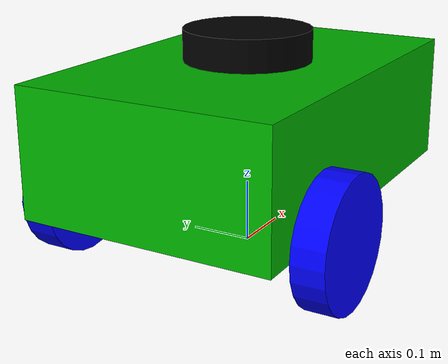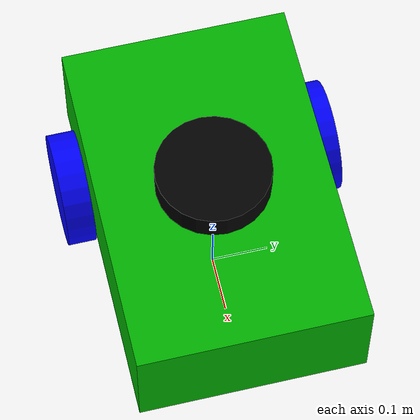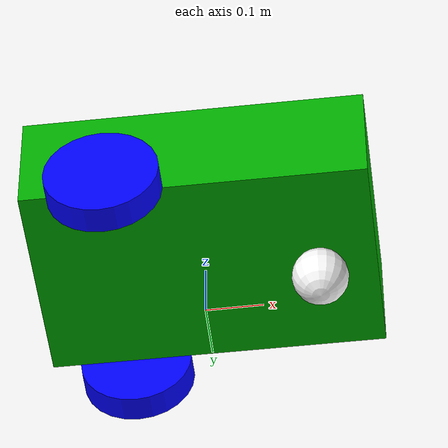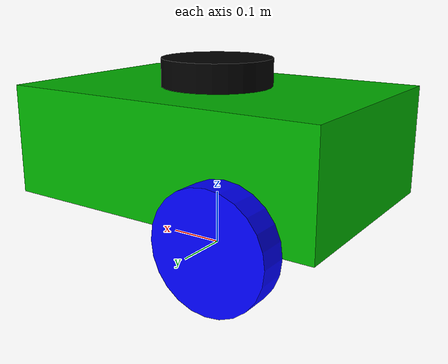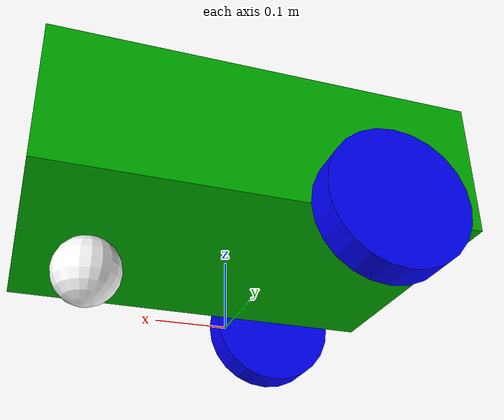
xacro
<?xml version="1.0"?>

<robot xmlns:xacro="http://www.ros.org/wiki/xacro" >

<material name="green">
    <color rgba="0.0 0.7 0.0 1.0"/>
</material>

<material name="blue">
<color rgba="0.0 0.0 1.0 1.0"/>
</material>

<material name="red">
    <color rgba="1.0 0.0 0.0 1.0"/>
</material>

<material name="white">
    <color rgba="1.0 1.0 1.0 1.0"/>
</material>

<material name="black">
    <color rgba="0.0 0.0 0.0 1.0"/>
</material>

<!--- All Robots links-->

<!--Base_link properties-->
<link name="base_footprint"/>

<link name="base_link">
    <visual>
        <geometry>
            <box size="0.6 0.4 0.2"/>
        </geometry>
        <origin xyz="0.0 0.0 0.1" rpy="0.0 0.0 0.0"/>
        <material name="green"/>
    </visual>

    <collision>
        <geometry>
            <box size="0.6 0.4 0.2"/>
        </geometry>
        <origin xyz="0.0 0.0 0.1" rpy="0.0 0.0 0.0"/>
    </collision>
    <inertial>
        <mass value="1.0"/>
        <origin xyz="0 0 0.1"/> <!-- Assuming the center of mass is at the origin -->
        <inertia ixx="0.0167" ixy="0.0" ixz="0.0" iyy="0.0333" iyz="0.0" izz="0.0433"/>
    </inertial>

</link>

<!--Lidar properties-->
<link name = "lidar">

<robot xmlns:xacro="http://www.ros.org/wiki/xacro"  name="roboct">

<material name="green">
    <color rgba="0.0 0.7 0.0 1.0"/>
</material>

<material name="blue">
<color rgba="0.0 0.0 1.0 1.0"/>
</material>

<material name="red">
    <color rgba="1.0 0.0 0.0 1.0"/>
</material>

<material name="white">
    <color rgba="1.0 1.0 1.0 1.0"/>
</material>

<material name="black">
    <color rgba="0.0 0.0 0.0 1.0"/>
</material>

<!--- All Robots links-->

<!--Base_link properties-->
<link name="base_footprint"/>

<link name="base_link">
    <visual>
        <geometry>
            <box size="0.6 0.4 0.2"/>
        </geometry>
        <origin xyz="0.0 0.0 0.1" rpy="0.0 0.0 0.0"/>
        <material name="green"/>
    </visual>

    <collision>
        <geometry>
            <box size="0.6 0.4 0.2"/>
        </geometry>
        <origin xyz="0.0 0.0 0.1" rpy="0.0 0.0 0.0"/>
    </collision>
    <inertial>
        <mass value="1.0"/>
        <origin xyz="0 0 0.1"/> <!-- Assuming the center of mass is at the origin -->
        <inertia ixx="0.0167" ixy="0.0" ixz="0.0" iyy="0.0333" iyz="0.0" izz="0.0433"/>
    </inertial>

</link>

<!--Lidar properties-->
<link name = "lidar">
    <visual>
            <geometry>
                <cylinder radius="0.1" length="0.05"/>
            </geometry>
            <origin xyz="0.0 0.0 0.0" rpy="0.0 0.0 0.0"/>
            <material name="black"/>
    </visual>
    <collision>
        <geometry>
            <cylinder radius="0.1" length="0.05"/>
        </geometry>
    </collision>
    <inertial>
            <mass value="1.0"/>
            <origin xyz="0 0 0"/>
            <inertia ixx="0.001458" iyy="0.001458" izz="0.00125" ixy="0.0" ixz="0.0" iyz="0.0"/>
    </inertial>
</link>

<!--Left Wheel properties-->
<link name = "left_wheel">
    <visual>
            <geometry>
                <cylinder radius="0.1" length="0.05"/>
            </geometry>
            <origin xyz="0.0 0.0 0.0" rpy="1.57 0.0 0.0"/>
            <material name="blue"/>
    </visual>

    <collision>
        <geometry>
            <cylinder radius="0.1" length="0.05"/>
        </geometry>
        <origin xyz="0.0 0.0 0.0" rpy="1.57 0.0 0.0"/>
    </collision>
    <inertial>
            <mass value="1.0"/>
            <origin xyz="0 0 0"/>
            <inertia ixx="0.001458" iyy="0.001458" izz="0.00125" ixy="0.0" ixz="0.0" iyz="0.0"/>
    </inertial>
</link>

<!--Right Wheel properties-->
<link name = "right_wheel">
    <visual>
            <geometry>
                <cylinder radius="0.1" length="0.05"/>
            </geometry>
            <origin xyz="0.0 0.0 0.0" rpy="1.570 0.0 0.0"/>
            <material name="blue"/>
    </visual>

    <collision>
        <geometry>
            <cylinder radius="0.1" length="0.05"/>
        </geometry>
        <origin xyz="0.0 0.0 0.0" rpy="1.57 0.0 0.0"/>
    </collision>
    <inertial>
        <mass value="1.0"/>
        <origin xyz="0 0 0"/>
        <inertia ixx="0.001458" iyy="0.001458" izz="0.00125" ixy="0.0" ixz="0.0" iyz="0.0"/>
    </inertial>
</link>

<!--Caster Wheel properties-->
<link name = "caster_wheel">
<visual>
        <geometry>
            <sphere radius="0.05"/>
        </geometry>
        <origin xyz="0.0 0.0 0.0" rpy="0.0 0.0 0.0"/>
        <material name="white"/>
</visual>
<collision>
        <geometry>
            <sphere radius="0.05"/>
        </geometry>
</collision>
<inertial>
    <origin xyz="0 0 0" rpy="0 0 0"/> <!-- Assume the center of mass is at the origin -->
    <mass value="1.0"/>
    <inertia ixx="0.001" ixy="0.0" ixz="0.0" iyy="0.001" iyz="0.0" izz="0.001"/>
  </inertial>
</link>

<!--- All joints for links-->

<joint name="base_lidar" type="fixed">
    <origin xyz="0.0 0.0 0.225" rpy="0.0 0.0 0.0"/>
    <parent link="base_link"/>
    <child link="lidar"/>
    <axis xyz="0.0 0.0 0.0"/>
    <limit lower="0.0" upper="0.0" effort="0.0" velocity="0.0"/>
</joint>

<joint name="base_left_wheel" type="continuous">
    <origin xyz="-0.15 0.225 0.0" rpy="0.0 0.0 0.0"/>
    <parent link="base_link"/>
    <child link="left_wheel"/>
    <axis xyz="0.0 1.0 0.0"/>
    <limit lower="0.0" upper="0.0" effort="0.0" velocity="1000.0"/>
    <dynamics damping="1.0" friction="1.0"/>
</joint>

<joint name="base_right_wheel" type="continuous">
    <origin xyz="-0.15 -0.225 0.0" rpy="0.0 0.0 0.0"/>
    <parent link="base_link"/>
    <child link="right_wheel"/>
    <axis xyz="0.0 1.0 0.0"/>
    <limit lower="0.0" upper="0.0" effort="0.0" velocity="1000.0"/>
    <dynamics damping="1.0" friction="1.0"/>
</joint>

<joint name="base_caster" type="fixed">
    <origin xyz="0.2 0.0 -0.04" rpy="0.0 0.0 0.0"/>
    <parent link="base_link"/>
    <child link="caster_wheel"/>
    <axis xyz="0.0 0.0 0.0"/>
    <limit lower="0.0" upper="0.0" effort="0.0" velocity="0.0"/>
    <dynamics damping="1.0" friction="1.0"/>

</joint>

<joint name="base_link_footprint_joint" type="fixed">
    <origin xyz="0.0 0.0 0.1" rpy="0.0 0.0 0.0"/>
    <parent link="base_footprint"/>
    <child link="base_link"/>

</joint>

</robot>

    <visual>
            <geometry>
                <cylinder radius="0.1" length="0.05"/>
            </geometry>
            <origin xyz="0.0 0.0 0.0" rpy="0.0 0.0 0.0"/>
            <material name="black"/>
    </visual>
    <collision>
        <geometry>
            <cylinder radius="0.1" length="0.05"/>
        </geometry>
    </collision>
    <inertial>
            <mass value="1.0"/>
            <origin xyz="0 0 0"/>
            <inertia ixx="0.001458" iyy="0.001458" izz="0.00125" ixy="0.0" ixz="0.0" iyz="0.0"/>
    </inertial>
</link>

<!--Left Wheel properties-->
<link name = "left_wheel">
    <visual>
            <geometry>
                <cylinder radius="0.1" length="0.05"/>
            </geometry>
            <origin xyz="0.0 0.0 0.0" rpy="1.57 0.0 0.0"/>
            <material name="blue"/>
    </visual>

    <collision>
        <geometry>
            <cylinder radius="0.1" length="0.05"/>
        </geometry>
        <origin xyz="0.0 0.0 0.0" rpy="1.57 0.0 0.0"/>
    </collision>
    <inertial>
            <mass value="1.0"/>
            <origin xyz="0 0 0"/>
            <inertia ixx="0.001458" iyy="0.001458" izz="0.00125" ixy="0.0" ixz="0.0" iyz="0.0"/>
    </inertial>
</link>

<!--Right Wheel properties-->
<link name = "right_wheel">
    <visual>
            <geometry>
                <cylinder radius="0.1" length="0.05"/>
            </geometry>
            <origin xyz="0.0 0.0 0.0" rpy="1.570 0.0 0.0"/>
            <material name="blue"/>
    </visual>

    <collision>
        <geometry>
            <cylinder radius="0.1" length="0.05"/>
        </geometry>
        <origin xyz="0.0 0.0 0.0" rpy="1.57 0.0 0.0"/>
    </collision>
    <inertial>
        <mass value="1.0"/>
        <origin xyz="0 0 0"/>
        <inertia ixx="0.001458" iyy="0.001458" izz="0.00125" ixy="0.0" ixz="0.0" iyz="0.0"/>
    </inertial>
</link>

<!--Caster Wheel properties-->
<link name = "caster_wheel">
<visual>
        <geometry>
            <sphere radius="0.05"/>
        </geometry>
        <origin xyz="0.0 0.0 0.0" rpy="0.0 0.0 0.0"/>
        <material name="white"/>
</visual>
<collision>
        <geometry>
            <sphere radius="0.05"/>
        </geometry>
</collision>
<inertial>
    <origin xyz="0 0 0" rpy="0 0 0"/> <!-- Assume the center of mass is at the origin -->
    <mass value="1.0"/>
    <inertia ixx="0.001" ixy="0.0" ixz="0.0" iyy="0.001" iyz="0.0" izz="0.001"/>
  </inertial>
</link>

<!--- All joints for links-->

<joint name="base_lidar" type="fixed">
    <origin xyz="0.0 0.0 0.225" rpy="0.0 0.0 0.0"/>
    <parent link="base_link"/>
    <child link="lidar"/>
    <axis xyz="0.0 0.0 0.0"/>
    <limit lower="0.0" upper="0.0" effort="0.0" velocity="0.0"/>
</joint>

<joint name="base_left_wheel" type="continuous">
    <origin xyz="-0.15 0.225 0.0" rpy="0.0 0.0 0.0"/>
    <parent link="base_link"/>
    <child link="left_wheel"/>
    <axis xyz="0.0 1.0 0.0"/>
    <limit lower="0.0" upper="0.0" effort="0.0" velocity="1000.0"/>
    <dynamics damping="1.0" friction="1.0"/>
</joint>

<joint name="base_right_wheel" type="continuous">
    <origin xyz="-0.15 -0.225 0.0" rpy="0.0 0.0 0.0"/>
    <parent link="base_link"/>
    <child link="right_wheel"/>
    <axis xyz="0.0 1.0 0.0"/>
    <limit lower="0.0" upper="0.0" effort="0.0" velocity="1000.0"/>
    <dynamics damping="1.0" friction="1.0"/>
</joint>

<joint name="base_caster" type="fixed">
    <origin xyz="0.2 0.0 -0.04" rpy="0.0 0.0 0.0"/>
    <parent link="base_link"/>
    <child link="caster_wheel"/>
    <axis xyz="0.0 0.0 0.0"/>
    <limit lower="0.0" upper="0.0" effort="0.0" velocity="0.0"/>
    <dynamics damping="1.0" friction="1.0"/>

</joint>

<joint name="base_link_footprint_joint" type="fixed">
    <origin xyz="0.0 0.0 0.1" rpy="0.0 0.0 0.0"/>
    <parent link="base_footprint"/>
    <child link="base_link"/>

</joint>

</robot>
